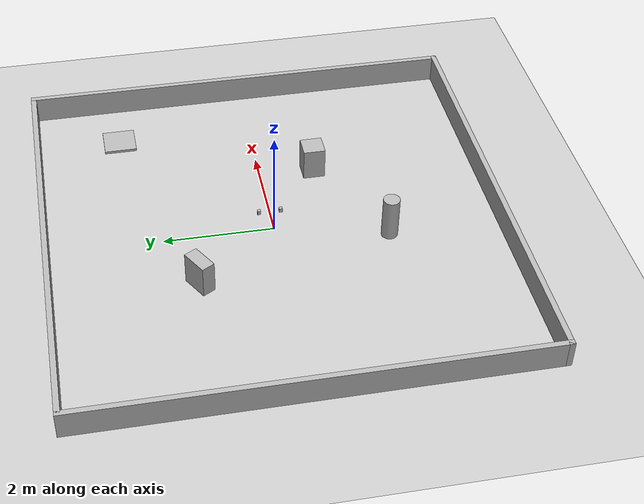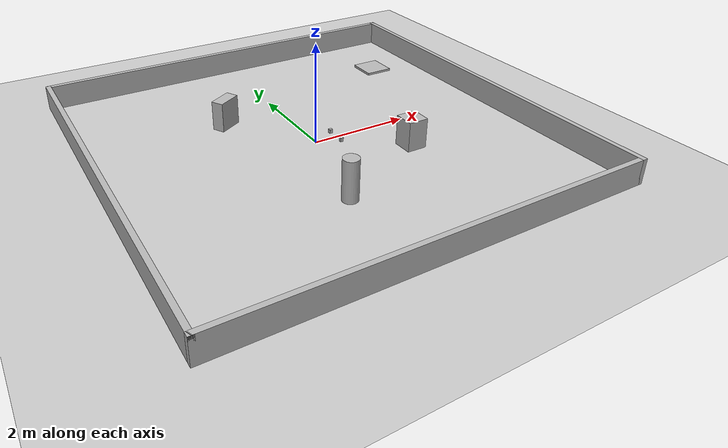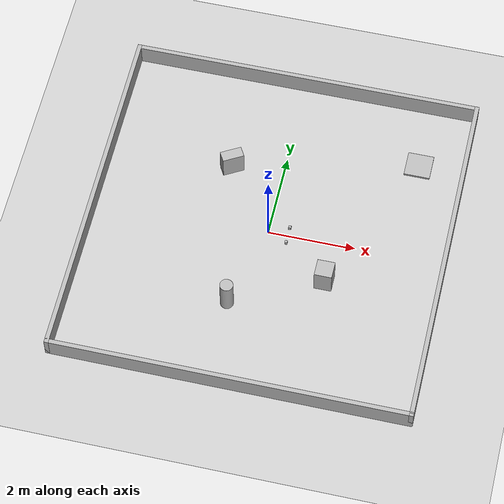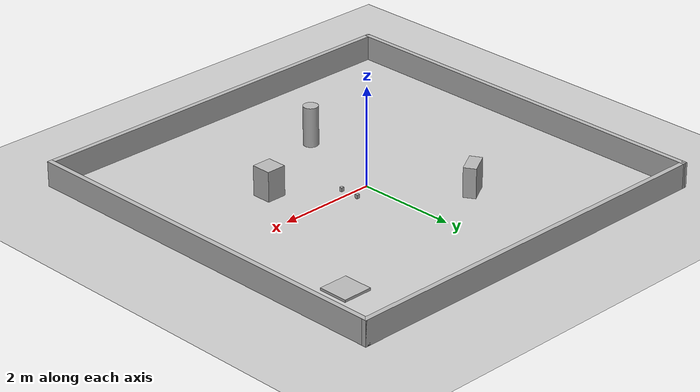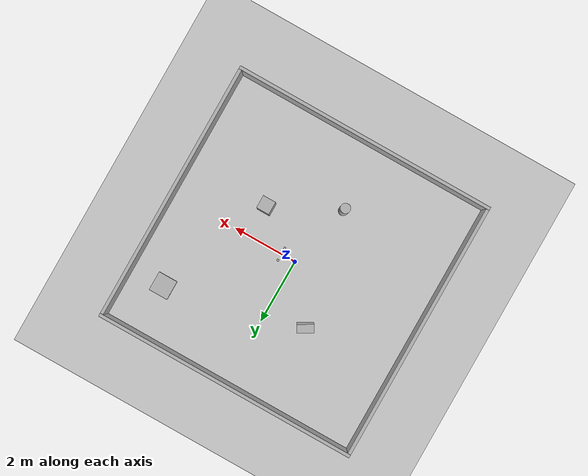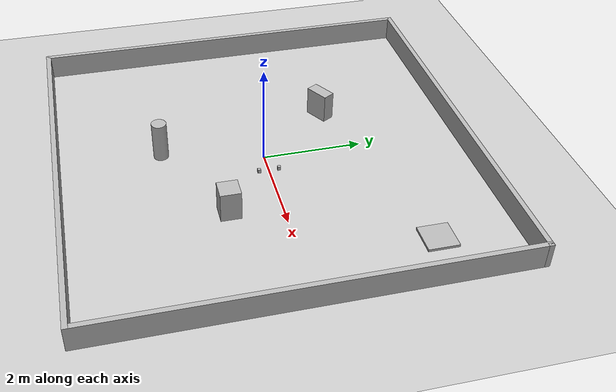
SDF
<?xml version="1.0"?>
<sdf version="1.6">
  <world name="competition_arena">

    <physics type="ode">
      <real_time_update_rate>1000.0</real_time_update_rate>
      <max_step_size>0.001</max_step_size>
      <real_time_factor>1</real_time_factor>
    </physics>

    <light type="directional" name="sun">
      <cast_shadows>true</cast_shadows>
      <pose>0 0 10 0 0 0</pose>
      <diffuse>0.85 0.85 0.85 1</diffuse>
      <specular>0.2 0.2 0.2 1</specular>
      <attenuation>
        <range>1000</range><constant>0.9</constant>
        <linear>0.01</linear><quadratic>0.001</quadratic>
      </attenuation>
      <direction>-0.5 0.1 -0.9</direction>
    </light>

    <!-- Ground -->
    <model name="ground_plane">
      <static>true</static>
      <link name="link">
        <collision name="collision">
          <geometry><plane><normal>0 0 1</normal><size>20 20</size></plane></geometry>
        </collision>
        <visual name="visual">
          <geometry><plane><normal>0 0 1</normal><size>20 20</size></plane></geometry>
          <material><script>
            <uri>file://media/materials/scripts/gazebo.material</uri>
            <n>Gazebo/Grey</n>
          </script></material>
        </visual>
      </link>
    </model>

    <!-- ── Arena walls (8 × 8 m, 0.5 m tall) ───────────────────────── -->
    <model name="wall_north"><static>true</static><pose>0 4.05 0.25 0 0 0</pose>
      <link name="link">
        <collision name="col"><geometry><box><size>8.2 0.1 0.5</size></box></geometry></collision>
        <visual name="vis"><geometry><box><size>8.2 0.1 0.5</size></box></geometry>
          <material><script><uri>file://media/materials/scripts/gazebo.material</uri>
            <n>Gazebo/White</n></script></material></visual>
      </link>
    </model>

    <model name="wall_south"><static>true</static><pose>0 -4.05 0.25 0 0 0</pose>
      <link name="link">
        <collision name="col"><geometry><box><size>8.2 0.1 0.5</size></box></geometry></collision>
        <visual name="vis"><geometry><box><size>8.2 0.1 0.5</size></box></geometry>
          <material><script><uri>file://media/materials/scripts/gazebo.material</uri>
            <n>Gazebo/White</n></script></material></visual>
      </link>
    </model>

    <model name="wall_east"><static>true</static><pose>4.05 0 0.25 0 0 1.5708</pose>
      <link name="link">
        <collision name="col"><geometry><box><size>8.2 0.1 0.5</size></box></geometry></collision>
        <visual name="vis"><geometry><box><size>8.2 0.1 0.5</size></box></geometry>
          <material><script><uri>file://media/materials/scripts/gazebo.material</uri>
            <n>Gazebo/White</n></script></material></visual>
      </link>
    </model>

    <model name="wall_west"><static>true</static><pose>-4.05 0 0.25 0 0 1.5708</pose>
      <link name="link">
        <collision name="col"><geometry><box><size>8.2 0.1 0.5</size></box></geometry></collision>
        <visual name="vis"><geometry><box><size>8.2 0.1 0.5</size></box></geometry>
          <material><script><uri>file://media/materials/scripts/gazebo.material</uri>
            <n>Gazebo/White</n></script></material></visual>
      </link>
    </model>

    <!-- ── Paddle interaction targets (light boxes the paddles sweep) ── -->
    <model name="paddle_target_left">
      <static>false</static>
      <pose>0.45 0.20 0.04 0 0 0</pose>
      <link name="link">
        <inertial><mass>0.05</mass>
          <inertia><ixx>0.0001</ixx><iyy>0.0001</iyy><izz>0.0001</izz></inertia>
        </inertial>
        <collision name="col"><geometry><box><size>0.06 0.06 0.08</size></box></geometry></collision>
        <visual name="vis">
          <geometry><box><size>0.06 0.06 0.08</size></box></geometry>
          <material><script><uri>file://media/materials/scripts/gazebo.material</uri>
            <n>Gazebo/Yellow</n></script></material>
        </visual>
      </link>
    </model>

    <model name="paddle_target_right">
      <static>false</static>
      <pose>0.45 -0.20 0.04 0 0 0</pose>
      <link name="link">
        <inertial><mass>0.05</mass>
          <inertia><ixx>0.0001</ixx><iyy>0.0001</iyy><izz>0.0001</izz></inertia>
        </inertial>
        <collision name="col"><geometry><box><size>0.06 0.06 0.08</size></box></geometry></collision>
        <visual name="vis">
          <geometry><box><size>0.06 0.06 0.08</size></box></geometry>
          <material><script><uri>file://media/materials/scripts/gazebo.material</uri>
            <n>Gazebo/Yellow</n></script></material>
        </visual>
      </link>
    </model>

    <!-- ── Goal platform (robot navigates here, crank deploys) ─────── -->
    <model name="goal_platform">
      <static>true</static>
      <pose>3.0 2.5 0.025 0 0 0</pose>
      <link name="link">
        <collision name="col"><geometry><box><size>0.6 0.6 0.05</size></box></geometry></collision>
        <visual name="vis">
          <geometry><box><size>0.6 0.6 0.05</size></box></geometry>
          <material><script><uri>file://media/materials/scripts/gazebo.material</uri>
            <n>Gazebo/Green</n></script></material>
        </visual>
      </link>
    </model>

    <!-- ── Navigation obstacles ─────────────────────────────────────── -->
    <model name="obstacle_1"><static>true</static><pose>1.5 -1.0 0.3 0 0 0</pose>
      <link name="link">
        <collision name="col"><geometry><box><size>0.4 0.4 0.6</size></box></geometry></collision>
        <visual name="vis"><geometry><box><size>0.4 0.4 0.6</size></box></geometry>
          <material><script><uri>file://media/materials/scripts/gazebo.material</uri>
            <n>Gazebo/Orange</n></script></material></visual>
      </link>
    </model>

    <model name="obstacle_2"><static>true</static><pose>-1.2 1.5 0.3 0 0 0.523</pose>
      <link name="link">
        <collision name="col"><geometry><box><size>0.5 0.25 0.6</size></box></geometry></collision>
        <visual name="vis"><geometry><box><size>0.5 0.25 0.6</size></box></geometry>
          <material><script><uri>file://media/materials/scripts/gazebo.material</uri>
            <n>Gazebo/Orange</n></script></material></visual>
      </link>
    </model>

    <model name="obstacle_pillar"><static>true</static><pose>-0.5 -2.0 0.4 0 0 0</pose>
      <link name="link">
        <collision name="col"><geometry><cylinder><radius>0.15</radius><length>0.8</length></cylinder></geometry></collision>
        <visual name="vis"><geometry><cylinder><radius>0.15</radius><length>0.8</length></cylinder></geometry>
          <material><script><uri>file://media/materials/scripts/gazebo.material</uri>
            <n>Gazebo/Red</n></script></material></visual>
      </link>
    </model>

  </world>
</sdf>
